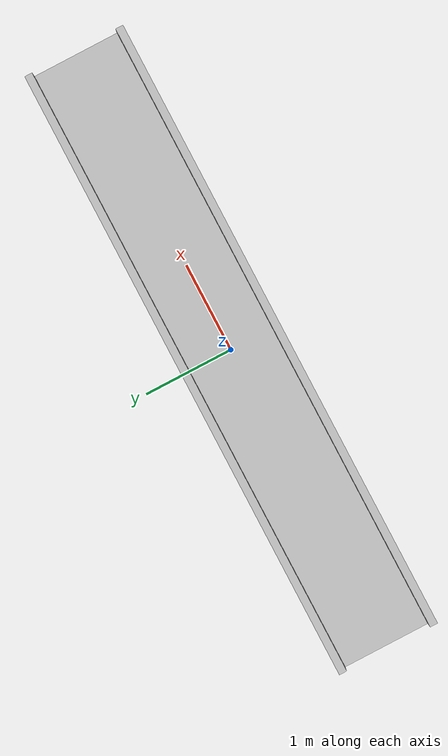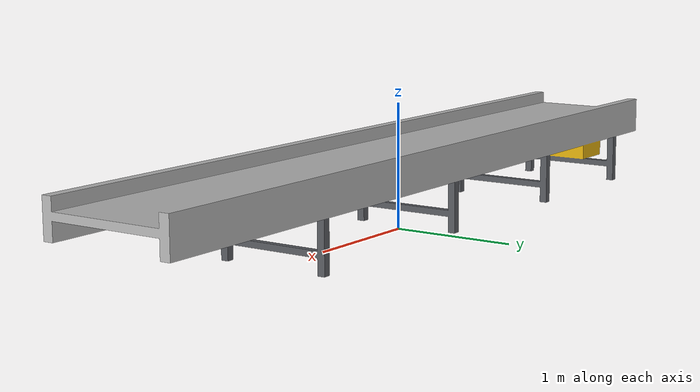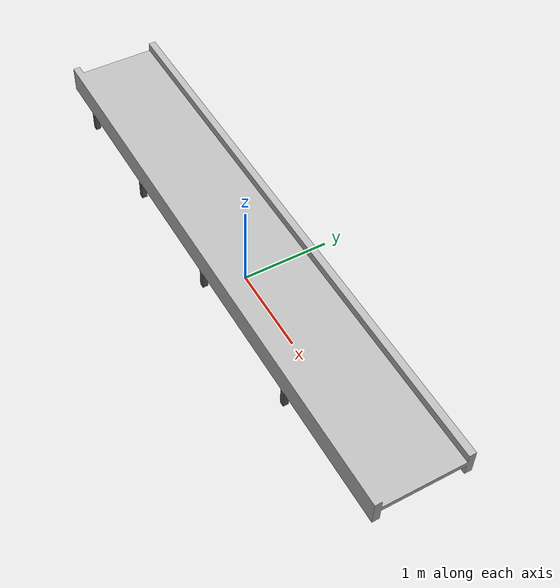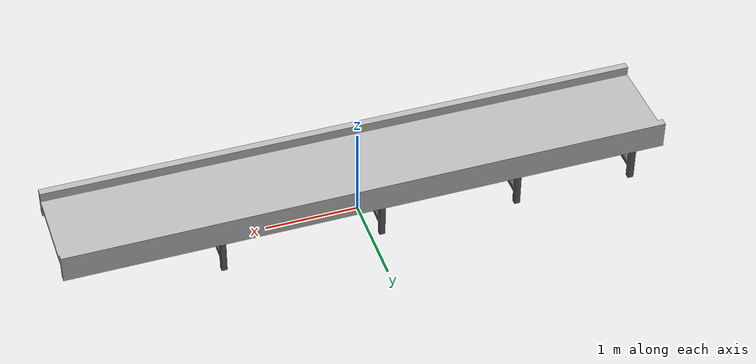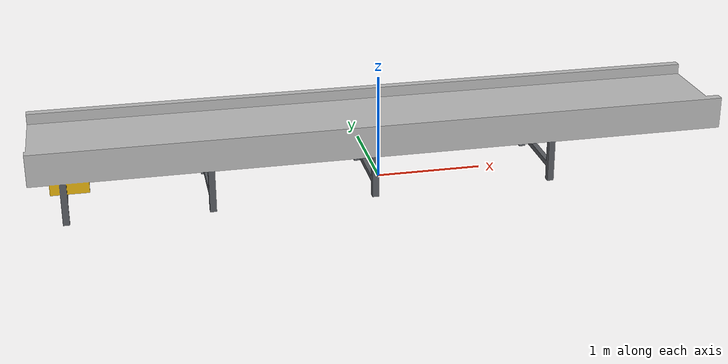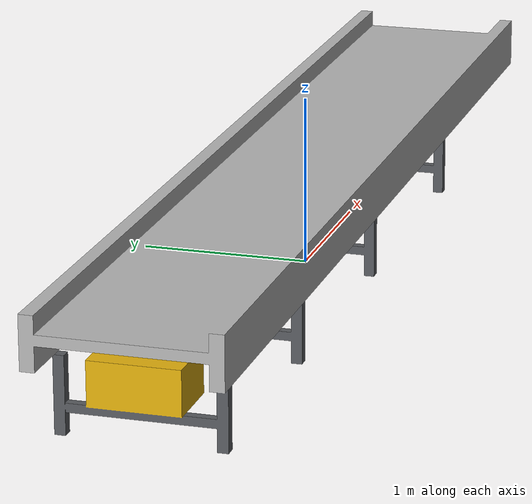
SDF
<?xml version="1.0"?>
<sdf version="1.6">
  <model name="dock_conveyor">
    <static>true</static>
    <link name="link">
      <collision name="belt">
        <pose>0 0 0.6 0 0 0</pose>
        <geometry><box><size>6.45 0.9 0.06</size></box></geometry>
      </collision>
      <collision name="rail_-1">
        <pose>0 -0.49 0.58 0 0 0</pose>
        <geometry><box><size>6.45 0.08 0.3</size></box></geometry>
      </collision>
      <collision name="rail_1">
        <pose>0 0.49 0.58 0 0 0</pose>
        <geometry><box><size>6.45 0.08 0.3</size></box></geometry>
      </collision>
      <collision name="leg_0_-1">
        <pose>-2.925 -0.43 0.215 0 0 0</pose>
        <geometry><box><size>0.06 0.06 0.43</size></box></geometry>
      </collision>
      <collision name="leg_0_1">
        <pose>-2.925 0.43 0.215 0 0 0</pose>
        <geometry><box><size>0.06 0.06 0.43</size></box></geometry>
      </collision>
      <collision name="leg_1_-1">
        <pose>-1.625 -0.43 0.215 0 0 0</pose>
        <geometry><box><size>0.06 0.06 0.43</size></box></geometry>
      </collision>
      <collision name="leg_1_1">
        <pose>-1.625 0.43 0.215 0 0 0</pose>
        <geometry><box><size>0.06 0.06 0.43</size></box></geometry>
      </collision>
      <collision name="leg_2_-1">
        <pose>-0.125 -0.43 0.215 0 0 0</pose>
        <geometry><box><size>0.06 0.06 0.43</size></box></geometry>
      </collision>
      <collision name="leg_2_1">
        <pose>-0.125 0.43 0.215 0 0 0</pose>
        <geometry><box><size>0.06 0.06 0.43</size></box></geometry>
      </collision>
      <collision name="leg_3_-1">
        <pose>1.575 -0.43 0.215 0 0 0</pose>
        <geometry><box><size>0.06 0.06 0.43</size></box></geometry>
      </collision>
      <collision name="leg_3_1">
        <pose>1.575 0.43 0.215 0 0 0</pose>
        <geometry><box><size>0.06 0.06 0.43</size></box></geometry>
      </collision>
      <visual name="visual">
        <cast_shadows>false</cast_shadows>
        <geometry><mesh><uri>model://dock_conveyor/meshes/mesh.dae</uri></mesh></geometry>
      </visual>
    </link>
    <plugin name="conveyor_belt" filename="/workspace/models/dock_conveyor/plugins/libconveyor_belt.so">
      <belt_length>6.45</belt_length>
      <belt_width>0.9</belt_width>
      <belt_top>0.63</belt_top>
      <reach>0.6</reach>
      <speed>0.3</speed>
      <overrun>0.3</overrun>
    </plugin>
  </model>
</sdf>
